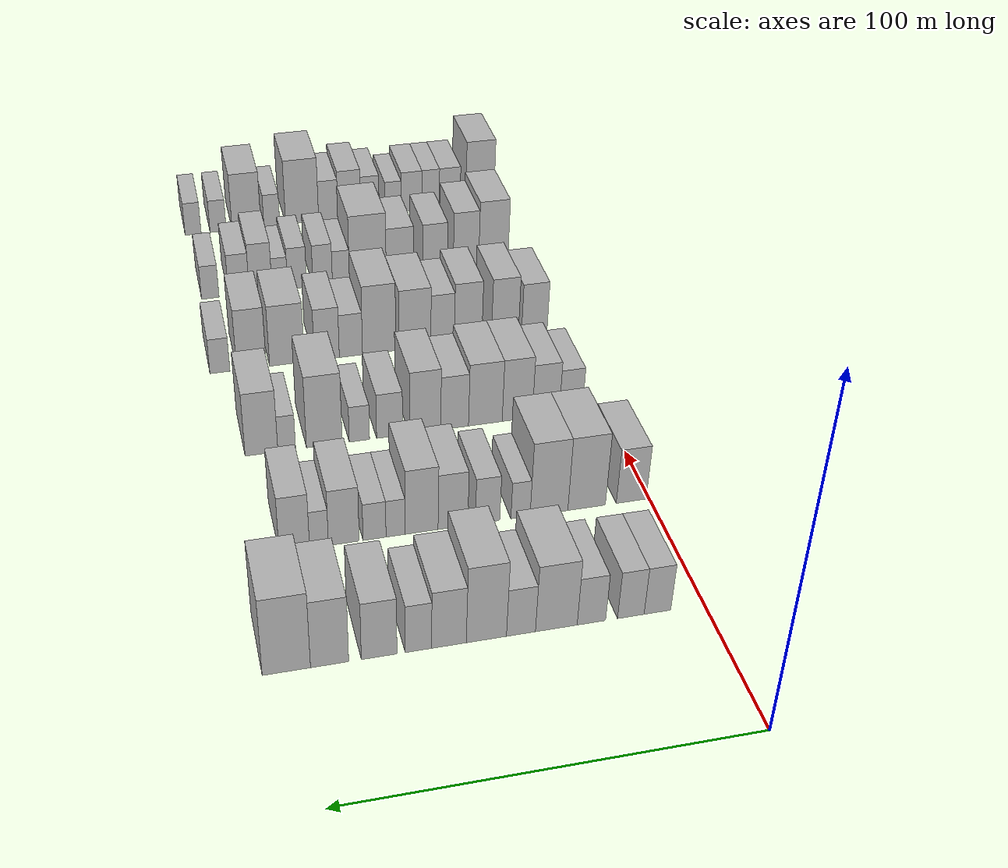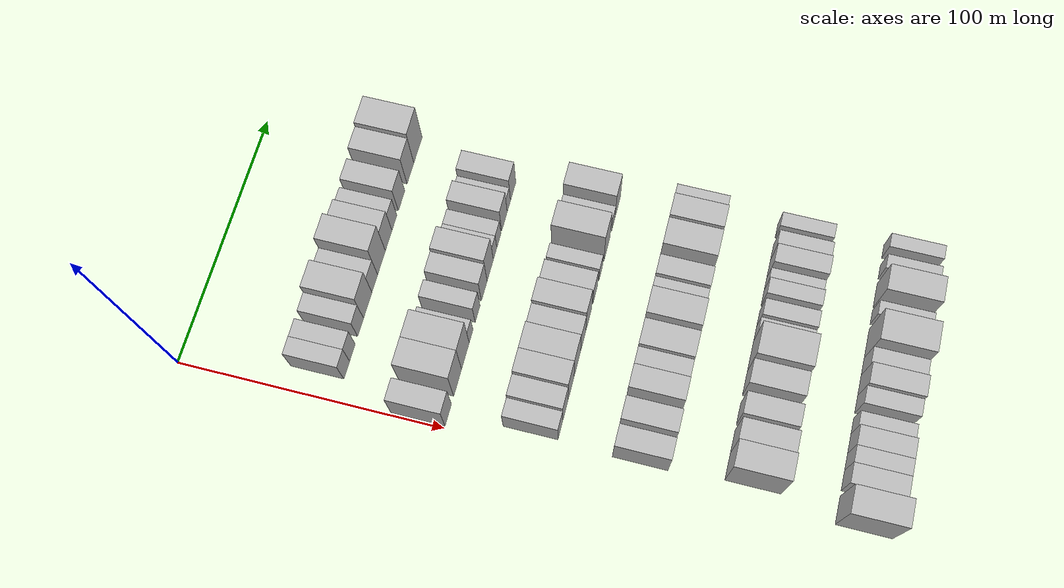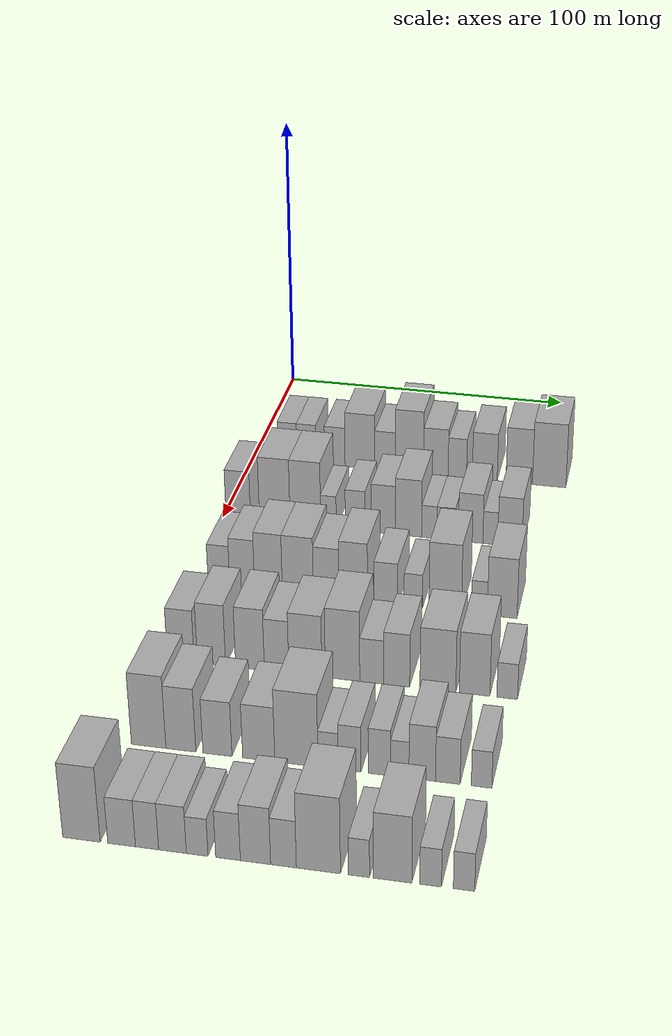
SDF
<sdf version="1.6">
 <world name="default">
  <model name="building_73">
   <static>1</static>
   <pose>50.0000 12.0459 0 0.000000 0.000000 0.000000</pose>
   <link name="link">
    <pose>0 0 7.50 0 0 0</pose>
    <collision name="collision"><geometry><box><size>20.0000 6.7732 15.0000</size></box></geometry></collision>
    <visual name="visual">
     <cast_shadows>0</cast_shadows>
     <geometry><box><size>20.0000 6.7732 15.0000</size></box></geometry>
     <material>
      <script>
       <uri>model://HANNAS_wall/materials/scripts</uri>
       <uri>model://HANNAS_wall/materials/textures</uri>
       <name>vrc/HANNAS_wall</name>
      </script>
     </material>
    </visual>
   </link>
  </model>
  <model name="building_74">
   <static>1</static>
   <pose>50.0000 18.7949 0 0.000000 0.000000 0.000000</pose>
   <link name="link">
    <pose>0 0 7.50 0 0 0</pose>
    <collision name="collision"><geometry><box><size>20.0000 6.7249 15.0000</size></box></geometry></collision>
    <visual name="visual">
     <cast_shadows>0</cast_shadows>
     <geometry><box><size>20.0000 6.7249 15.0000</size></box></geometry>
     <material>
      <script>
       <uri>model://HANNAS_wall/materials/scripts</uri>
       <uri>model://HANNAS_wall/materials/textures</uri>
       <name>vrc/HANNAS_wall</name>
      </script>
     </material>
    </visual>
   </link>
  </model>
  <model name="building_75">
   <static>1</static>
   <pose>50.0000 28.7229 0 0.000000 0.000000 0.000000</pose>
   <link name="link">
    <pose>0 0 7.50 0 0 0</pose>
    <collision name="collision"><geometry><box><size>20.0000 7.1312 15.0000</size></box></geometry></collision>
    <visual name="visual">
     <cast_shadows>0</cast_shadows>
     <geometry><box><size>20.0000 7.1312 15.0000</size></box></geometry>
     <material>
      <script>
       <uri>model://HANNAS_wall/materials/scripts</uri>
       <uri>model://HANNAS_wall/materials/textures</uri>
       <name>vrc/HANNAS_wall</name>
      </script>
     </material>
    </visual>
   </link>
  </model>
  <model name="building_76">
   <static>1</static>
   <pose>50.0000 37.4743 0 0.000000 0.000000 0.000000</pose>
   <link name="link">
    <pose>0 0 10.50 0 0 0</pose>
    <collision name="collision"><geometry><box><size>20.0000 10.3715 21.0000</size></box></geometry></collision>
    <visual name="visual">
     <cast_shadows>0</cast_shadows>
     <geometry><box><size>20.0000 10.3715 21.0000</size></box></geometry>
     <material>
      <script>
       <uri>model://HANNAS_wall/materials/scripts</uri>
       <uri>model://HANNAS_wall/materials/textures</uri>
       <name>vrc/HANNAS_wall</name>
      </script>
     </material>
    </visual>
   </link>
  </model>
  <model name="building_77">
   <static>1</static>
   <pose>50.0000 46.2324 0 0.000000 0.000000 0.000000</pose>
   <link name="link">
    <pose>0 0 7.50 0 0 0</pose>
    <collision name="collision"><geometry><box><size>20.0000 7.1447 15.0000</size></box></geometry></collision>
    <visual name="visual">
     <cast_shadows>0</cast_shadows>
     <geometry><box><size>20.0000 7.1447 15.0000</size></box></geometry>
     <material>
      <script>
       <uri>model://HANNAS_wall/materials/scripts</uri>
       <uri>model://HANNAS_wall/materials/textures</uri>
       <name>vrc/HANNAS_wall</name>
      </script>
     </material>
    </visual>
   </link>
  </model>
  <model name="building_78">
   <static>1</static>
   <pose>50.0000 54.7265 0 0.000000 0.000000 0.000000</pose>
   <link name="link">
    <pose>0 0 12.00 0 0 0</pose>
    <collision name="collision"><geometry><box><size>20.0000 9.8435 24.0000</size></box></geometry></collision>
    <visual name="visual">
     <cast_shadows>0</cast_shadows>
     <geometry><box><size>20.0000 9.8435 24.0000</size></box></geometry>
     <material>
      <script>
       <uri>model://HANNAS_wall/materials/scripts</uri>
       <uri>model://HANNAS_wall/materials/textures</uri>
       <name>vrc/HANNAS_wall</name>
      </script>
     </material>
    </visual>
   </link>
  </model>
  <model name="building_79">
   <static>1</static>
   <pose>50.0000 63.8626 0 0.000000 0.000000 0.000000</pose>
   <link name="link">
    <pose>0 0 9.00 0 0 0</pose>
    <collision name="collision"><geometry><box><size>20.0000 8.4287 18.0000</size></box></geometry></collision>
    <visual name="visual">
     <cast_shadows>0</cast_shadows>
     <geometry><box><size>20.0000 8.4287 18.0000</size></box></geometry>
     <material>
      <script>
       <uri>model://HANNAS_wall/materials/scripts</uri>
       <uri>model://HANNAS_wall/materials/textures</uri>
       <name>vrc/HANNAS_wall</name>
      </script>
     </material>
    </visual>
   </link>
  </model>
  <model name="building_80">
   <static>1</static>
   <pose>50.0000 71.2270 0 0.000000 0.000000 0.000000</pose>
   <link name="link">
    <pose>0 0 7.50 0 0 0</pose>
    <collision name="collision"><geometry><box><size>20.0000 6.3001 15.0000</size></box></geometry></collision>
    <visual name="visual">
     <cast_shadows>0</cast_shadows>
     <geometry><box><size>20.0000 6.3001 15.0000</size></box></geometry>
     <material>
      <script>
       <uri>model://HANNAS_wall/materials/scripts</uri>
       <uri>model://HANNAS_wall/materials/textures</uri>
       <name>vrc/HANNAS_wall</name>
      </script>
     </material>
    </visual>
   </link>
  </model>
  <model name="building_81">
   <static>1</static>
   <pose>50.0000 80.6220 0 0.000000 0.000000 0.000000</pose>
   <link name="link">
    <pose>0 0 9.00 0 0 0</pose>
    <collision name="collision"><geometry><box><size>20.0000 8.4898 18.0000</size></box></geometry></collision>
    <visual name="visual">
     <cast_shadows>0</cast_shadows>
     <geometry><box><size>20.0000 8.4898 18.0000</size></box></geometry>
     <material>
      <script>
       <uri>model://HANNAS_wall/materials/scripts</uri>
       <uri>model://HANNAS_wall/materials/textures</uri>
       <name>vrc/HANNAS_wall</name>
      </script>
     </material>
    </visual>
   </link>
  </model>
  <model name="building_82">
   <static>1</static>
   <pose>50.0000 92.3684 0 0.000000 0.000000 0.000000</pose>
   <link name="link">
    <pose>0 0 10.50 0 0 0</pose>
    <collision name="collision"><geometry><box><size>20.0000 9.0030 21.0000</size></box></geometry></collision>
    <visual name="visual">
     <cast_shadows>0</cast_shadows>
     <geometry><box><size>20.0000 9.0030 21.0000</size></box></geometry>
     <material>
      <script>
       <uri>model://HANNAS_wall/materials/scripts</uri>
       <uri>model://HANNAS_wall/materials/textures</uri>
       <name>vrc/HANNAS_wall</name>
      </script>
     </material>
    </visual>
   </link>
  </model>
  <model name="building_83">
   <static>1</static>
   <pose>50.0000 102.5158 0 0.000000 0.000000 0.000000</pose>
   <link name="link">
    <pose>0 0 12.00 0 0 0</pose>
    <collision name="collision"><geometry><box><size>20.0000 11.2918 24.0000</size></box></geometry></collision>
    <visual name="visual">
     <cast_shadows>0</cast_shadows>
     <geometry><box><size>20.0000 11.2918 24.0000</size></box></geometry>
     <material>
      <script>
       <uri>model://HANNAS_wall/materials/scripts</uri>
       <uri>model://HANNAS_wall/materials/textures</uri>
       <name>vrc/HANNAS_wall</name>
      </script>
     </material>
    </visual>
   </link>
  </model>
  <model name="building_211">
   <static>1</static>
   <pose>90.0000 5.0111 0 0.000000 0.000000 0.000000</pose>
   <link name="link">
    <pose>0 0 9.00 0 0 0</pose>
    <collision name="collision"><geometry><box><size>20.0000 8.2553 18.0000</size></box></geometry></collision>
    <visual name="visual">
     <cast_shadows>0</cast_shadows>
     <geometry><box><size>20.0000 8.2553 18.0000</size></box></geometry>
     <material>
      <script>
       <uri>model://HANNAS_wall/materials/scripts</uri>
       <uri>model://HANNAS_wall/materials/textures</uri>
       <name>vrc/HANNAS_wall</name>
      </script>
     </material>
    </visual>
   </link>
  </model>
  <model name="building_212">
   <static>1</static>
   <pose>90.0000 17.2808 0 0.000000 0.000000 0.000000</pose>
   <link name="link">
    <pose>0 0 12.00 0 0 0</pose>
    <collision name="collision"><geometry><box><size>20.0000 10.2840 24.0000</size></box></geometry></collision>
    <visual name="visual">
     <cast_shadows>0</cast_shadows>
     <geometry><box><size>20.0000 10.2840 24.0000</size></box></geometry>
     <material>
      <script>
       <uri>model://HANNAS_wall/materials/scripts</uri>
       <uri>model://HANNAS_wall/materials/textures</uri>
       <name>vrc/HANNAS_wall</name>
      </script>
     </material>
    </visual>
   </link>
  </model>
  <model name="building_213">
   <static>1</static>
   <pose>90.0000 27.5423 0 0.000000 0.000000 0.000000</pose>
   <link name="link">
    <pose>0 0 12.00 0 0 0</pose>
    <collision name="collision"><geometry><box><size>20.0000 10.2389 24.0000</size></box></geometry></collision>
    <visual name="visual">
     <cast_shadows>0</cast_shadows>
     <geometry><box><size>20.0000 10.2389 24.0000</size></box></geometry>
     <material>
      <script>
       <uri>model://HANNAS_wall/materials/scripts</uri>
       <uri>model://HANNAS_wall/materials/textures</uri>
       <name>vrc/HANNAS_wall</name>
      </script>
     </material>
    </visual>
   </link>
  </model>
  <model name="building_214">
   <static>1</static>
   <pose>90.0000 35.2422 0 0.000000 0.000000 0.000000</pose>
   <link name="link">
    <pose>0 0 6.00 0 0 0</pose>
    <collision name="collision"><geometry><box><size>20.0000 5.1610 12.0000</size></box></geometry></collision>
    <visual name="visual">
     <cast_shadows>0</cast_shadows>
     <geometry><box><size>20.0000 5.1610 12.0000</size></box></geometry>
     <material>
      <script>
       <uri>model://HANNAS_wall/materials/scripts</uri>
       <uri>model://HANNAS_wall/materials/textures</uri>
       <name>vrc/HANNAS_wall</name>
      </script>
     </material>
    </visual>
   </link>
  </model>
  <model name="building_215">
   <static>1</static>
   <pose>90.0000 44.1003 0 0.000000 0.000000 0.000000</pose>
   <link name="link">
    <pose>0 0 7.50 0 0 0</pose>
    <collision name="collision"><geometry><box><size>20.0000 6.5551 15.0000</size></box></geometry></collision>
    <visual name="visual">
     <cast_shadows>0</cast_shadows>
     <geometry><box><size>20.0000 6.5551 15.0000</size></box></geometry>
     <material>
      <script>
       <uri>model://HANNAS_wall/materials/scripts</uri>
       <uri>model://HANNAS_wall/materials/textures</uri>
       <name>vrc/HANNAS_wall</name>
      </script>
     </material>
    </visual>
   </link>
  </model>
  <model name="building_216">
   <static>1</static>
   <pose>90.0000 53.3080 0 0.000000 0.000000 0.000000</pose>
   <link name="link">
    <pose>0 0 9.00 0 0 0</pose>
    <collision name="collision"><geometry><box><size>20.0000 7.8604 18.0000</size></box></geometry></collision>
    <visual name="visual">
     <cast_shadows>0</cast_shadows>
     <geometry><box><size>20.0000 7.8604 18.0000</size></box></geometry>
     <material>
      <script>
       <uri>model://HANNAS_wall/materials/scripts</uri>
       <uri>model://HANNAS_wall/materials/textures</uri>
       <name>vrc/HANNAS_wall</name>
      </script>
     </material>
    </visual>
   </link>
  </model>
  <model name="building_217">
   <static>1</static>
   <pose>90.0000 61.5824 0 0.000000 0.000000 0.000000</pose>
   <link name="link">
    <pose>0 0 10.50 0 0 0</pose>
    <collision name="collision"><geometry><box><size>20.0000 8.6885 21.0000</size></box></geometry></collision>
    <visual name="visual">
     <cast_shadows>0</cast_shadows>
     <geometry><box><size>20.0000 8.6885 21.0000</size></box></geometry>
     <material>
      <script>
       <uri>model://HANNAS_wall/materials/scripts</uri>
       <uri>model://HANNAS_wall/materials/textures</uri>
       <name>vrc/HANNAS_wall</name>
      </script>
     </material>
    </visual>
   </link>
  </model>
  <model name="building_218">
   <static>1</static>
   <pose>90.0000 68.4163 0 0.000000 0.000000 0.000000</pose>
   <link name="link">
    <pose>0 0 6.00 0 0 0</pose>
    <collision name="collision"><geometry><box><size>20.0000 4.9794 12.0000</size></box></geometry></collision>
    <visual name="visual">
     <cast_shadows>0</cast_shadows>
     <geometry><box><size>20.0000 4.9794 12.0000</size></box></geometry>
     <material>
      <script>
       <uri>model://HANNAS_wall/materials/scripts</uri>
       <uri>model://HANNAS_wall/materials/textures</uri>
       <name>vrc/HANNAS_wall</name>
      </script>
     </material>
    </visual>
   </link>
  </model>
  <model name="building_219">
   <static>1</static>
   <pose>90.0000 73.8951 0 0.000000 0.000000 0.000000</pose>
   <link name="link">
    <pose>0 0 6.00 0 0 0</pose>
    <collision name="collision"><geometry><box><size>20.0000 5.9780 12.0000</size></box></geometry></collision>
    <visual name="visual">
     <cast_shadows>0</cast_shadows>
     <geometry><box><size>20.0000 5.9780 12.0000</size></box></geometry>
     <material>
      <script>
       <uri>model://HANNAS_wall/materials/scripts</uri>
       <uri>model://HANNAS_wall/materials/textures</uri>
       <name>vrc/HANNAS_wall</name>
      </script>
     </material>
    </visual>
   </link>
  </model>
  <model name="building_220">
   <static>1</static>
   <pose>90.0000 81.8570 0 0.000000 0.000000 0.000000</pose>
   <link name="link">
    <pose>0 0 9.00 0 0 0</pose>
    <collision name="collision"><geometry><box><size>20.0000 7.9458 18.0000</size></box></geometry></collision>
    <visual name="visual">
     <cast_shadows>0</cast_shadows>
     <geometry><box><size>20.0000 7.9458 18.0000</size></box></geometry>
     <material>
      <script>
       <uri>model://HANNAS_wall/materials/scripts</uri>
       <uri>model://HANNAS_wall/materials/textures</uri>
       <name>vrc/HANNAS_wall</name>
      </script>
     </material>
    </visual>
   </link>
  </model>
  <model name="building_221">
   <static>1</static>
   <pose>90.0000 88.2534 0 0.000000 0.000000 0.000000</pose>
   <link name="link">
    <pose>0 0 6.00 0 0 0</pose>
    <collision name="collision"><geometry><box><size>20.0000 4.8470 12.0000</size></box></geometry></collision>
    <visual name="visual">
     <cast_shadows>0</cast_shadows>
     <geometry><box><size>20.0000 4.8470 12.0000</size></box></geometry>
     <material>
      <script>
       <uri>model://HANNAS_wall/materials/scripts</uri>
       <uri>model://HANNAS_wall/materials/textures</uri>
       <name>vrc/HANNAS_wall</name>
      </script>
     </material>
    </visual>
   </link>
  </model>
  <model name="building_222">
   <static>1</static>
   <pose>90.0000 94.5775 0 0.000000 0.000000 0.000000</pose>
   <link name="link">
    <pose>0 0 9.00 0 0 0</pose>
    <collision name="collision"><geometry><box><size>20.0000 7.8013 18.0000</size></box></geometry></collision>
    <visual name="visual">
     <cast_shadows>0</cast_shadows>
     <geometry><box><size>20.0000 7.8013 18.0000</size></box></geometry>
     <material>
      <script>
       <uri>model://HANNAS_wall/materials/scripts</uri>
       <uri>model://HANNAS_wall/materials/textures</uri>
       <name>vrc/HANNAS_wall</name>
      </script>
     </material>
    </visual>
   </link>
  </model>
  <model name="building_351">
   <static>1</static>
   <pose>130.0000 9.3370 0 0.000000 0.000000 0.000000</pose>
   <link name="link">
    <pose>0 0 7.50 0 0 0</pose>
    <collision name="collision"><geometry><box><size>20.0000 6.8540 15.0000</size></box></geometry></collision>
    <visual name="visual">
     <cast_shadows>0</cast_shadows>
     <geometry><box><size>20.0000 6.8540 15.0000</size></box></geometry>
     <material>
      <script>
       <uri>model://HANNAS_wall/materials/scripts</uri>
       <uri>model://HANNAS_wall/materials/textures</uri>
       <name>vrc/HANNAS_wall</name>
      </script>
     </material>
    </visual>
   </link>
  </model>
  <model name="building_352">
   <static>1</static>
   <pose>130.0000 16.7291 0 0.000000 0.000000 0.000000</pose>
   <link name="link">
    <pose>0 0 9.00 0 0 0</pose>
    <collision name="collision"><geometry><box><size>20.0000 7.9303 18.0000</size></box></geometry></collision>
    <visual name="visual">
     <cast_shadows>0</cast_shadows>
     <geometry><box><size>20.0000 7.9303 18.0000</size></box></geometry>
     <material>
      <script>
       <uri>model://HANNAS_wall/materials/scripts</uri>
       <uri>model://HANNAS_wall/materials/textures</uri>
       <name>vrc/HANNAS_wall</name>
      </script>
     </material>
    </visual>
   </link>
  </model>
  <model name="building_353">
   <static>1</static>
   <pose>130.0000 25.0855 0 0.000000 0.000000 0.000000</pose>
   <link name="link">
    <pose>0 0 10.50 0 0 0</pose>
    <collision name="collision"><geometry><box><size>20.0000 8.7824 21.0000</size></box></geometry></collision>
    <visual name="visual">
     <cast_shadows>0</cast_shadows>
     <geometry><box><size>20.0000 8.7824 21.0000</size></box></geometry>
     <material>
      <script>
       <uri>model://HANNAS_wall/materials/scripts</uri>
       <uri>model://HANNAS_wall/materials/textures</uri>
       <name>vrc/HANNAS_wall</name>
      </script>
     </material>
    </visual>
   </link>
  </model>
  <model name="building_354">
   <static>1</static>
   <pose>130.0000 34.3622 0 0.000000 0.000000 0.000000</pose>
   <link name="link">
    <pose>0 0 10.50 0 0 0</pose>
    <collision name="collision"><geometry><box><size>20.0000 9.7710 21.0000</size></box></geometry></collision>
    <visual name="visual">
     <cast_shadows>0</cast_shadows>
     <geometry><box><size>20.0000 9.7710 21.0000</size></box></geometry>
     <material>
      <script>
       <uri>model://HANNAS_wall/materials/scripts</uri>
       <uri>model://HANNAS_wall/materials/textures</uri>
       <name>vrc/HANNAS_wall</name>
      </script>
     </material>
    </visual>
   </link>
  </model>
  <model name="building_355">
   <static>1</static>
   <pose>130.0000 43.2538 0 0.000000 0.000000 0.000000</pose>
   <link name="link">
    <pose>0 0 9.00 0 0 0</pose>
    <collision name="collision"><geometry><box><size>20.0000 8.0122 18.0000</size></box></geometry></collision>
    <visual name="visual">
     <cast_shadows>0</cast_shadows>
     <geometry><box><size>20.0000 8.0122 18.0000</size></box></geometry>
     <material>
      <script>
       <uri>model://HANNAS_wall/materials/scripts</uri>
       <uri>model://HANNAS_wall/materials/textures</uri>
       <name>vrc/HANNAS_wall</name>
      </script>
     </material>
    </visual>
   </link>
  </model>
  <model name="building_356">
   <static>1</static>
   <pose>130.0000 51.7144 0 0.000000 0.000000 0.000000</pose>
   <link name="link">
    <pose>0 0 10.50 0 0 0</pose>
    <collision name="collision"><geometry><box><size>20.0000 8.9091 21.0000</size></box></geometry></collision>
    <visual name="visual">
     <cast_shadows>0</cast_shadows>
     <geometry><box><size>20.0000 8.9091 21.0000</size></box></geometry>
     <material>
      <script>
       <uri>model://HANNAS_wall/materials/scripts</uri>
       <uri>model://HANNAS_wall/materials/textures</uri>
       <name>vrc/HANNAS_wall</name>
      </script>
     </material>
    </visual>
   </link>
  </model>
  <model name="building_357">
   <static>1</static>
   <pose>130.0000 61.8252 0 0.000000 0.000000 0.000000</pose>
   <link name="link">
    <pose>0 0 7.50 0 0 0</pose>
    <collision name="collision"><geometry><box><size>20.0000 7.3125 15.0000</size></box></geometry></collision>
    <visual name="visual">
     <cast_shadows>0</cast_shadows>
     <geometry><box><size>20.0000 7.3125 15.0000</size></box></geometry>
     <material>
      <script>
       <uri>model://HANNAS_wall/materials/scripts</uri>
       <uri>model://HANNAS_wall/materials/textures</uri>
       <name>vrc/HANNAS_wall</name>
      </script>
     </material>
    </visual>
   </link>
  </model>
  <model name="building_358">
   <static>1</static>
   <pose>130.0000 70.3357 0 0.000000 0.000000 0.000000</pose>
   <link name="link">
    <pose>0 0 6.00 0 0 0</pose>
    <collision name="collision"><geometry><box><size>20.0000 5.7084 12.0000</size></box></geometry></collision>
    <visual name="visual">
     <cast_shadows>0</cast_shadows>
     <geometry><box><size>20.0000 5.7084 12.0000</size></box></geometry>
     <material>
      <script>
       <uri>model://HANNAS_wall/materials/scripts</uri>
       <uri>model://HANNAS_wall/materials/textures</uri>
       <name>vrc/HANNAS_wall</name>
      </script>
     </material>
    </visual>
   </link>
  </model>
  <model name="building_359">
   <static>1</static>
   <pose>130.0000 80.1763 0 0.000000 0.000000 0.000000</pose>
   <link name="link">
    <pose>0 0 12.00 0 0 0</pose>
    <collision name="collision"><geometry><box><size>20.0000 9.9728 24.0000</size></box></geometry></collision>
    <visual name="visual">
     <cast_shadows>0</cast_shadows>
     <geometry><box><size>20.0000 9.9728 24.0000</size></box></geometry>
     <material>
      <script>
       <uri>model://HANNAS_wall/materials/scripts</uri>
       <uri>model://HANNAS_wall/materials/textures</uri>
       <name>vrc/HANNAS_wall</name>
      </script>
     </material>
    </visual>
   </link>
  </model>
  <model name="building_360">
   <static>1</static>
   <pose>130.0000 90.6129 0 0.000000 0.000000 0.000000</pose>
   <link name="link">
    <pose>0 0 6.00 0 0 0</pose>
    <collision name="collision"><geometry><box><size>20.0000 4.9004 12.0000</size></box></geometry></collision>
    <visual name="visual">
     <cast_shadows>0</cast_shadows>
     <geometry><box><size>20.0000 4.9004 12.0000</size></box></geometry>
     <material>
      <script>
       <uri>model://HANNAS_wall/materials/scripts</uri>
       <uri>model://HANNAS_wall/materials/textures</uri>
       <name>vrc/HANNAS_wall</name>
      </script>
     </material>
    </visual>
   </link>
  </model>
  <model name="building_361">
   <static>1</static>
   <pose>130.0000 97.5812 0 0.000000 0.000000 0.000000</pose>
   <link name="link">
    <pose>0 0 10.50 0 0 0</pose>
    <collision name="collision"><geometry><box><size>20.0000 9.0362 21.0000</size></box></geometry></collision>
    <visual name="visual">
     <cast_shadows>0</cast_shadows>
     <geometry><box><size>20.0000 9.0362 21.0000</size></box></geometry>
     <material>
      <script>
       <uri>model://HANNAS_wall/materials/scripts</uri>
       <uri>model://HANNAS_wall/materials/textures</uri>
       <name>vrc/HANNAS_wall</name>
      </script>
     </material>
    </visual>
   </link>
  </model>
  <model name="building_492">
   <static>1</static>
   <pose>170.0000 8.6833 0 0.000000 0.000000 0.000000</pose>
   <link name="link">
    <pose>0 0 9.00 0 0 0</pose>
    <collision name="collision"><geometry><box><size>20.0000 8.0615 18.0000</size></box></geometry></collision>
    <visual name="visual">
     <cast_shadows>0</cast_shadows>
     <geometry><box><size>20.0000 8.0615 18.0000</size></box></geometry>
     <material>
      <script>
       <uri>model://HANNAS_wall/materials/scripts</uri>
       <uri>model://HANNAS_wall/materials/textures</uri>
       <name>vrc/HANNAS_wall</name>
      </script>
     </material>
    </visual>
   </link>
  </model>
  <model name="building_493">
   <static>1</static>
   <pose>170.0000 17.9398 0 0.000000 0.000000 0.000000</pose>
   <link name="link">
    <pose>0 0 10.50 0 0 0</pose>
    <collision name="collision"><geometry><box><size>20.0000 8.4514 21.0000</size></box></geometry></collision>
    <visual name="visual">
     <cast_shadows>0</cast_shadows>
     <geometry><box><size>20.0000 8.4514 21.0000</size></box></geometry>
     <material>
      <script>
       <uri>model://HANNAS_wall/materials/scripts</uri>
       <uri>model://HANNAS_wall/materials/textures</uri>
       <name>vrc/HANNAS_wall</name>
      </script>
     </material>
    </visual>
   </link>
  </model>
  <model name="building_494">
   <static>1</static>
   <pose>170.0000 29.4525 0 0.000000 0.000000 0.000000</pose>
   <link name="link">
    <pose>0 0 10.50 0 0 0</pose>
    <collision name="collision"><geometry><box><size>20.0000 8.5741 21.0000</size></box></geometry></collision>
    <visual name="visual">
     <cast_shadows>0</cast_shadows>
     <geometry><box><size>20.0000 8.5741 21.0000</size></box></geometry>
     <material>
      <script>
       <uri>model://HANNAS_wall/materials/scripts</uri>
       <uri>model://HANNAS_wall/materials/textures</uri>
       <name>vrc/HANNAS_wall</name>
      </script>
     </material>
    </visual>
   </link>
  </model>
  <model name="building_495">
   <static>1</static>
   <pose>170.0000 37.3714 0 0.000000 0.000000 0.000000</pose>
   <link name="link">
    <pose>0 0 9.00 0 0 0</pose>
    <collision name="collision"><geometry><box><size>20.0000 7.2636 18.0000</size></box></geometry></collision>
    <visual name="visual">
     <cast_shadows>0</cast_shadows>
     <geometry><box><size>20.0000 7.2636 18.0000</size></box></geometry>
     <material>
      <script>
       <uri>model://HANNAS_wall/materials/scripts</uri>
       <uri>model://HANNAS_wall/materials/textures</uri>
       <name>vrc/HANNAS_wall</name>
      </script>
     </material>
    </visual>
   </link>
  </model>
  <model name="building_496">
   <static>1</static>
   <pose>170.0000 45.9030 0 0.000000 0.000000 0.000000</pose>
   <link name="link">
    <pose>0 0 10.50 0 0 0</pose>
    <collision name="collision"><geometry><box><size>20.0000 9.7996 21.0000</size></box></geometry></collision>
    <visual name="visual">
     <cast_shadows>0</cast_shadows>
     <geometry><box><size>20.0000 9.7996 21.0000</size></box></geometry>
     <material>
      <script>
       <uri>model://HANNAS_wall/materials/scripts</uri>
       <uri>model://HANNAS_wall/materials/textures</uri>
       <name>vrc/HANNAS_wall</name>
      </script>
     </material>
    </visual>
   </link>
  </model>
  <model name="building_497">
   <static>1</static>
   <pose>170.0000 56.8488 0 0.000000 0.000000 0.000000</pose>
   <link name="link">
    <pose>0 0 12.00 0 0 0</pose>
    <collision name="collision"><geometry><box><size>20.0000 10.0920 24.0000</size></box></geometry></collision>
    <visual name="visual">
     <cast_shadows>0</cast_shadows>
     <geometry><box><size>20.0000 10.0920 24.0000</size></box></geometry>
     <material>
      <script>
       <uri>model://HANNAS_wall/materials/scripts</uri>
       <uri>model://HANNAS_wall/materials/textures</uri>
       <name>vrc/HANNAS_wall</name>
      </script>
     </material>
    </visual>
   </link>
  </model>
  <model name="building_498">
   <static>1</static>
   <pose>170.0000 65.4060 0 0.000000 0.000000 0.000000</pose>
   <link name="link">
    <pose>0 0 7.50 0 0 0</pose>
    <collision name="collision"><geometry><box><size>20.0000 7.0225 15.0000</size></box></geometry></collision>
    <visual name="visual">
     <cast_shadows>0</cast_shadows>
     <geometry><box><size>20.0000 7.0225 15.0000</size></box></geometry>
     <material>
      <script>
       <uri>model://HANNAS_wall/materials/scripts</uri>
       <uri>model://HANNAS_wall/materials/textures</uri>
       <name>vrc/HANNAS_wall</name>
      </script>
     </material>
    </visual>
   </link>
  </model>
  <model name="building_499">
   <static>1</static>
   <pose>170.0000 72.6806 0 0.000000 0.000000 0.000000</pose>
   <link name="link">
    <pose>0 0 9.00 0 0 0</pose>
    <collision name="collision"><geometry><box><size>20.0000 7.5266 18.0000</size></box></geometry></collision>
    <visual name="visual">
     <cast_shadows>0</cast_shadows>
     <geometry><box><size>20.0000 7.5266 18.0000</size></box></geometry>
     <material>
      <script>
       <uri>model://HANNAS_wall/materials/scripts</uri>
       <uri>model://HANNAS_wall/materials/textures</uri>
       <name>vrc/HANNAS_wall</name>
      </script>
     </material>
    </visual>
   </link>
  </model>
  <model name="building_500">
   <static>1</static>
   <pose>170.0000 84.6254 0 0.000000 0.000000 0.000000</pose>
   <link name="link">
    <pose>0 0 10.50 0 0 0</pose>
    <collision name="collision"><geometry><box><size>20.0000 10.3632 21.0000</size></box></geometry></collision>
    <visual name="visual">
     <cast_shadows>0</cast_shadows>
     <geometry><box><size>20.0000 10.3632 21.0000</size></box></geometry>
     <material>
      <script>
       <uri>model://HANNAS_wall/materials/scripts</uri>
       <uri>model://HANNAS_wall/materials/textures</uri>
       <name>vrc/HANNAS_wall</name>
      </script>
     </material>
    </visual>
   </link>
  </model>
  <model name="building_501">
   <static>1</static>
   <pose>170.0000 95.1908 0 0.000000 0.000000 0.000000</pose>
   <link name="link">
    <pose>0 0 10.50 0 0 0</pose>
    <collision name="collision"><geometry><box><size>20.0000 8.7676 21.0000</size></box></geometry></collision>
    <visual name="visual">
     <cast_shadows>0</cast_shadows>
     <geometry><box><size>20.0000 8.7676 21.0000</size></box></geometry>
     <material>
      <script>
       <uri>model://HANNAS_wall/materials/scripts</uri>
       <uri>model://HANNAS_wall/materials/textures</uri>
       <name>vrc/HANNAS_wall</name>
      </script>
     </material>
    </visual>
   </link>
  </model>
  <model name="building_502">
   <static>1</static>
   <pose>170.0000 104.5213 0 0.000000 0.000000 0.000000</pose>
   <link name="link">
    <pose>0 0 6.00 0 0 0</pose>
    <collision name="collision"><geometry><box><size>20.0000 5.8932 12.0000</size></box></geometry></collision>
    <visual name="visual">
     <cast_shadows>0</cast_shadows>
     <geometry><box><size>20.0000 5.8932 12.0000</size></box></geometry>
     <material>
      <script>
       <uri>model://HANNAS_wall/materials/scripts</uri>
       <uri>model://HANNAS_wall/materials/textures</uri>
       <name>vrc/HANNAS_wall</name>
      </script>
     </material>
    </visual>
   </link>
  </model>
  <model name="building_629">
   <static>1</static>
   <pose>210.0000 11.1286 0 0.000000 0.000000 0.000000</pose>
   <link name="link">
    <pose>0 0 12.00 0 0 0</pose>
    <collision name="collision"><geometry><box><size>20.0000 9.8034 24.0000</size></box></geometry></collision>
    <visual name="visual">
     <cast_shadows>0</cast_shadows>
     <geometry><box><size>20.0000 9.8034 24.0000</size></box></geometry>
     <material>
      <script>
       <uri>model://HANNAS_wall/materials/scripts</uri>
       <uri>model://HANNAS_wall/materials/textures</uri>
       <name>vrc/HANNAS_wall</name>
      </script>
     </material>
    </visual>
   </link>
  </model>
  <model name="building_630">
   <static>1</static>
   <pose>210.0000 20.2564 0 0.000000 0.000000 0.000000</pose>
   <link name="link">
    <pose>0 0 10.50 0 0 0</pose>
    <collision name="collision"><geometry><box><size>20.0000 8.4522 21.0000</size></box></geometry></collision>
    <visual name="visual">
     <cast_shadows>0</cast_shadows>
     <geometry><box><size>20.0000 8.4522 21.0000</size></box></geometry>
     <material>
      <script>
       <uri>model://HANNAS_wall/materials/scripts</uri>
       <uri>model://HANNAS_wall/materials/textures</uri>
       <name>vrc/HANNAS_wall</name>
      </script>
     </material>
    </visual>
   </link>
  </model>
  <model name="building_631">
   <static>1</static>
   <pose>210.0000 30.5599 0 0.000000 0.000000 0.000000</pose>
   <link name="link">
    <pose>0 0 9.00 0 0 0</pose>
    <collision name="collision"><geometry><box><size>20.0000 8.1549 18.0000</size></box></geometry></collision>
    <visual name="visual">
     <cast_shadows>0</cast_shadows>
     <geometry><box><size>20.0000 8.1549 18.0000</size></box></geometry>
     <material>
      <script>
       <uri>model://HANNAS_wall/materials/scripts</uri>
       <uri>model://HANNAS_wall/materials/textures</uri>
       <name>vrc/HANNAS_wall</name>
      </script>
     </material>
    </visual>
   </link>
  </model>
  <model name="building_632">
   <static>1</static>
   <pose>210.0000 42.1236 0 0.000000 0.000000 0.000000</pose>
   <link name="link">
    <pose>0 0 9.00 0 0 0</pose>
    <collision name="collision"><geometry><box><size>20.0000 8.9727 18.0000</size></box></geometry></collision>
    <visual name="visual">
     <cast_shadows>0</cast_shadows>
     <geometry><box><size>20.0000 8.9727 18.0000</size></box></geometry>
     <material>
      <script>
       <uri>model://HANNAS_wall/materials/scripts</uri>
       <uri>model://HANNAS_wall/materials/textures</uri>
       <name>vrc/HANNAS_wall</name>
      </script>
     </material>
    </visual>
   </link>
  </model>
  <model name="building_633">
   <static>1</static>
   <pose>210.0000 52.5974 0 0.000000 0.000000 0.000000</pose>
   <link name="link">
    <pose>0 0 12.00 0 0 0</pose>
    <collision name="collision"><geometry><box><size>20.0000 11.9749 24.0000</size></box></geometry></collision>
    <visual name="visual">
     <cast_shadows>0</cast_shadows>
     <geometry><box><size>20.0000 11.9749 24.0000</size></box></geometry>
     <material>
      <script>
       <uri>model://HANNAS_wall/materials/scripts</uri>
       <uri>model://HANNAS_wall/materials/textures</uri>
       <name>vrc/HANNAS_wall</name>
      </script>
     </material>
    </visual>
   </link>
  </model>
  <model name="building_634">
   <static>1</static>
   <pose>210.0000 61.3397 0 0.000000 0.000000 0.000000</pose>
   <link name="link">
    <pose>0 0 6.00 0 0 0</pose>
    <collision name="collision"><geometry><box><size>20.0000 5.5096 12.0000</size></box></geometry></collision>
    <visual name="visual">
     <cast_shadows>0</cast_shadows>
     <geometry><box><size>20.0000 5.5096 12.0000</size></box></geometry>
     <material>
      <script>
       <uri>model://HANNAS_wall/materials/scripts</uri>
       <uri>model://HANNAS_wall/materials/textures</uri>
       <name>vrc/HANNAS_wall</name>
      </script>
     </material>
    </visual>
   </link>
  </model>
  <model name="building_635">
   <static>1</static>
   <pose>210.0000 67.2303 0 0.000000 0.000000 0.000000</pose>
   <link name="link">
    <pose>0 0 7.50 0 0 0</pose>
    <collision name="collision"><geometry><box><size>20.0000 6.2717 15.0000</size></box></geometry></collision>
    <visual name="visual">
     <cast_shadows>0</cast_shadows>
     <geometry><box><size>20.0000 6.2717 15.0000</size></box></geometry>
     <material>
      <script>
       <uri>model://HANNAS_wall/materials/scripts</uri>
       <uri>model://HANNAS_wall/materials/textures</uri>
       <name>vrc/HANNAS_wall</name>
      </script>
     </material>
    </visual>
   </link>
  </model>
  <model name="building_636">
   <static>1</static>
   <pose>210.0000 75.4249 0 0.000000 0.000000 0.000000</pose>
   <link name="link">
    <pose>0 0 7.50 0 0 0</pose>
    <collision name="collision"><geometry><box><size>20.0000 6.1175 15.0000</size></box></geometry></collision>
    <visual name="visual">
     <cast_shadows>0</cast_shadows>
     <geometry><box><size>20.0000 6.1175 15.0000</size></box></geometry>
     <material>
      <script>
       <uri>model://HANNAS_wall/materials/scripts</uri>
       <uri>model://HANNAS_wall/materials/textures</uri>
       <name>vrc/HANNAS_wall</name>
      </script>
     </material>
    </visual>
   </link>
  </model>
  <model name="building_637">
   <static>1</static>
   <pose>210.0000 80.9699 0 0.000000 0.000000 0.000000</pose>
   <link name="link">
    <pose>0 0 6.00 0 0 0</pose>
    <collision name="collision"><geometry><box><size>20.0000 4.9725 12.0000</size></box></geometry></collision>
    <visual name="visual">
     <cast_shadows>0</cast_shadows>
     <geometry><box><size>20.0000 4.9725 12.0000</size></box></geometry>
     <material>
      <script>
       <uri>model://HANNAS_wall/materials/scripts</uri>
       <uri>model://HANNAS_wall/materials/textures</uri>
       <name>vrc/HANNAS_wall</name>
      </script>
     </material>
    </visual>
   </link>
  </model>
  <model name="building_638">
   <static>1</static>
   <pose>210.0000 87.0743 0 0.000000 0.000000 0.000000</pose>
   <link name="link">
    <pose>0 0 9.00 0 0 0</pose>
    <collision name="collision"><geometry><box><size>20.0000 7.2364 18.0000</size></box></geometry></collision>
    <visual name="visual">
     <cast_shadows>0</cast_shadows>
     <geometry><box><size>20.0000 7.2364 18.0000</size></box></geometry>
     <material>
      <script>
       <uri>model://HANNAS_wall/materials/scripts</uri>
       <uri>model://HANNAS_wall/materials/textures</uri>
       <name>vrc/HANNAS_wall</name>
      </script>
     </material>
    </visual>
   </link>
  </model>
  <model name="building_639">
   <static>1</static>
   <pose>210.0000 94.0046 0 0.000000 0.000000 0.000000</pose>
   <link name="link">
    <pose>0 0 7.50 0 0 0</pose>
    <collision name="collision"><geometry><box><size>20.0000 6.6243 15.0000</size></box></geometry></collision>
    <visual name="visual">
     <cast_shadows>0</cast_shadows>
     <geometry><box><size>20.0000 6.6243 15.0000</size></box></geometry>
     <material>
      <script>
       <uri>model://HANNAS_wall/materials/scripts</uri>
       <uri>model://HANNAS_wall/materials/textures</uri>
       <name>vrc/HANNAS_wall</name>
      </script>
     </material>
    </visual>
   </link>
  </model>
  <model name="building_640">
   <static>1</static>
   <pose>210.0000 103.0802 0 0.000000 0.000000 0.000000</pose>
   <link name="link">
    <pose>0 0 6.00 0 0 0</pose>
    <collision name="collision"><geometry><box><size>20.0000 5.5268 12.0000</size></box></geometry></collision>
    <visual name="visual">
     <cast_shadows>0</cast_shadows>
     <geometry><box><size>20.0000 5.5268 12.0000</size></box></geometry>
     <material>
      <script>
       <uri>model://HANNAS_wall/materials/scripts</uri>
       <uri>model://HANNAS_wall/materials/textures</uri>
       <name>vrc/HANNAS_wall</name>
      </script>
     </material>
    </visual>
   </link>
  </model>
  <model name="building_773">
   <static>1</static>
   <pose>250.0000 5.4460 0 0.000000 0.000000 0.000000</pose>
   <link name="link">
    <pose>0 0 12.00 0 0 0</pose>
    <collision name="collision"><geometry><box><size>20.0000 10.0393 24.0000</size></box></geometry></collision>
    <visual name="visual">
     <cast_shadows>0</cast_shadows>
     <geometry><box><size>20.0000 10.0393 24.0000</size></box></geometry>
     <material>
      <script>
       <uri>model://HANNAS_wall/materials/scripts</uri>
       <uri>model://HANNAS_wall/materials/textures</uri>
       <name>vrc/HANNAS_wall</name>
      </script>
     </material>
    </visual>
   </link>
  </model>
  <model name="building_774">
   <static>1</static>
   <pose>250.0000 16.1598 0 0.000000 0.000000 0.000000</pose>
   <link name="link">
    <pose>0 0 7.50 0 0 0</pose>
    <collision name="collision"><geometry><box><size>20.0000 7.3883 15.0000</size></box></geometry></collision>
    <visual name="visual">
     <cast_shadows>0</cast_shadows>
     <geometry><box><size>20.0000 7.3883 15.0000</size></box></geometry>
     <material>
      <script>
       <uri>model://HANNAS_wall/materials/scripts</uri>
       <uri>model://HANNAS_wall/materials/textures</uri>
       <name>vrc/HANNAS_wall</name>
      </script>
     </material>
    </visual>
   </link>
  </model>
  <model name="building_775">
   <static>1</static>
   <pose>250.0000 22.9236 0 0.000000 0.000000 0.000000</pose>
   <link name="link">
    <pose>0 0 7.50 0 0 0</pose>
    <collision name="collision"><geometry><box><size>20.0000 6.1394 15.0000</size></box></geometry></collision>
    <visual name="visual">
     <cast_shadows>0</cast_shadows>
     <geometry><box><size>20.0000 6.1394 15.0000</size></box></geometry>
     <material>
      <script>
       <uri>model://HANNAS_wall/materials/scripts</uri>
       <uri>model://HANNAS_wall/materials/textures</uri>
       <name>vrc/HANNAS_wall</name>
      </script>
     </material>
    </visual>
   </link>
  </model>
  <model name="building_776">
   <static>1</static>
   <pose>250.0000 29.6359 0 0.000000 0.000000 0.000000</pose>
   <link name="link">
    <pose>0 0 7.50 0 0 0</pose>
    <collision name="collision"><geometry><box><size>20.0000 7.2853 15.0000</size></box></geometry></collision>
    <visual name="visual">
     <cast_shadows>0</cast_shadows>
     <geometry><box><size>20.0000 7.2853 15.0000</size></box></geometry>
     <material>
      <script>
       <uri>model://HANNAS_wall/materials/scripts</uri>
       <uri>model://HANNAS_wall/materials/textures</uri>
       <name>vrc/HANNAS_wall</name>
      </script>
     </material>
    </visual>
   </link>
  </model>
  <model name="building_777">
   <static>1</static>
   <pose>250.0000 36.1294 0 0.000000 0.000000 0.000000</pose>
   <link name="link">
    <pose>0 0 6.00 0 0 0</pose>
    <collision name="collision"><geometry><box><size>20.0000 5.7018 12.0000</size></box></geometry></collision>
    <visual name="visual">
     <cast_shadows>0</cast_shadows>
     <geometry><box><size>20.0000 5.7018 12.0000</size></box></geometry>
     <material>
      <script>
       <uri>model://HANNAS_wall/materials/scripts</uri>
       <uri>model://HANNAS_wall/materials/textures</uri>
       <name>vrc/HANNAS_wall</name>
      </script>
     </material>
    </visual>
   </link>
  </model>
  <model name="building_778">
   <static>1</static>
   <pose>250.0000 44.2014 0 0.000000 0.000000 0.000000</pose>
   <link name="link">
    <pose>0 0 7.50 0 0 0</pose>
    <collision name="collision"><geometry><box><size>20.0000 6.4423 15.0000</size></box></geometry></collision>
    <visual name="visual">
     <cast_shadows>0</cast_shadows>
     <geometry><box><size>20.0000 6.4423 15.0000</size></box></geometry>
     <material>
      <script>
       <uri>model://HANNAS_wall/materials/scripts</uri>
       <uri>model://HANNAS_wall/materials/textures</uri>
       <name>vrc/HANNAS_wall</name>
      </script>
     </material>
    </visual>
   </link>
  </model>
  <model name="building_779">
   <static>1</static>
   <pose>250.0000 51.3561 0 0.000000 0.000000 0.000000</pose>
   <link name="link">
    <pose>0 0 9.00 0 0 0</pose>
    <collision name="collision"><geometry><box><size>20.0000 7.8670 18.0000</size></box></geometry></collision>
    <visual name="visual">
     <cast_shadows>0</cast_shadows>
     <geometry><box><size>20.0000 7.8670 18.0000</size></box></geometry>
     <material>
      <script>
       <uri>model://HANNAS_wall/materials/scripts</uri>
       <uri>model://HANNAS_wall/materials/textures</uri>
       <name>vrc/HANNAS_wall</name>
      </script>
     </material>
    </visual>
   </link>
  </model>
  <model name="building_780">
   <static>1</static>
   <pose>250.0000 58.6171 0 0.000000 0.000000 0.000000</pose>
   <link name="link">
    <pose>0 0 7.50 0 0 0</pose>
    <collision name="collision"><geometry><box><size>20.0000 6.6549 15.0000</size></box></geometry></collision>
    <visual name="visual">
     <cast_shadows>0</cast_shadows>
     <geometry><box><size>20.0000 6.6549 15.0000</size></box></geometry>
     <material>
      <script>
       <uri>model://HANNAS_wall/materials/scripts</uri>
       <uri>model://HANNAS_wall/materials/textures</uri>
       <name>vrc/HANNAS_wall</name>
      </script>
     </material>
    </visual>
   </link>
  </model>
  <model name="building_781">
   <static>1</static>
   <pose>250.0000 67.6101 0 0.000000 0.000000 0.000000</pose>
   <link name="link">
    <pose>0 0 12.00 0 0 0</pose>
    <collision name="collision"><geometry><box><size>20.0000 11.3312 24.0000</size></box></geometry></collision>
    <visual name="visual">
     <cast_shadows>0</cast_shadows>
     <geometry><box><size>20.0000 11.3312 24.0000</size></box></geometry>
     <material>
      <script>
       <uri>model://HANNAS_wall/materials/scripts</uri>
       <uri>model://HANNAS_wall/materials/textures</uri>
       <name>vrc/HANNAS_wall</name>
      </script>
     </material>
    </visual>
   </link>
  </model>
  <model name="building_782">
   <static>1</static>
   <pose>250.0000 77.9795 0 0.000000 0.000000 0.000000</pose>
   <link name="link">
    <pose>0 0 6.00 0 0 0</pose>
    <collision name="collision"><geometry><box><size>20.0000 5.4075 12.0000</size></box></geometry></collision>
    <visual name="visual">
     <cast_shadows>0</cast_shadows>
     <geometry><box><size>20.0000 5.4075 12.0000</size></box></geometry>
     <material>
      <script>
       <uri>model://HANNAS_wall/materials/scripts</uri>
       <uri>model://HANNAS_wall/materials/textures</uri>
       <name>vrc/HANNAS_wall</name>
      </script>
     </material>
    </visual>
   </link>
  </model>
  <model name="building_783">
   <static>1</static>
   <pose>250.0000 86.5659 0 0.000000 0.000000 0.000000</pose>
   <link name="link">
    <pose>0 0 10.50 0 0 0</pose>
    <collision name="collision"><geometry><box><size>20.0000 9.7653 21.0000</size></box></geometry></collision>
    <visual name="visual">
     <cast_shadows>0</cast_shadows>
     <geometry><box><size>20.0000 9.7653 21.0000</size></box></geometry>
     <material>
      <script>
       <uri>model://HANNAS_wall/materials/scripts</uri>
       <uri>model://HANNAS_wall/materials/textures</uri>
       <name>vrc/HANNAS_wall</name>
      </script>
     </material>
    </visual>
   </link>
  </model>
  <model name="building_784">
   <static>1</static>
   <pose>250.0000 96.1774 0 0.000000 0.000000 0.000000</pose>
   <link name="link">
    <pose>0 0 6.00 0 0 0</pose>
    <collision name="collision"><geometry><box><size>20.0000 5.4579 12.0000</size></box></geometry></collision>
    <visual name="visual">
     <cast_shadows>0</cast_shadows>
     <geometry><box><size>20.0000 5.4579 12.0000</size></box></geometry>
     <material>
      <script>
       <uri>model://HANNAS_wall/materials/scripts</uri>
       <uri>model://HANNAS_wall/materials/textures</uri>
       <name>vrc/HANNAS_wall</name>
      </script>
     </material>
    </visual>
   </link>
  </model>
  <model name="building_785">
   <static>1</static>
   <pose>250.0000 104.5809 0 0.000000 0.000000 0.000000</pose>
   <link name="link">
    <pose>0 0 6.00 0 0 0</pose>
    <collision name="collision"><geometry><box><size>20.0000 5.3490 12.0000</size></box></geometry></collision>
    <visual name="visual">
     <cast_shadows>0</cast_shadows>
     <geometry><box><size>20.0000 5.3490 12.0000</size></box></geometry>
     <material>
      <script>
       <uri>model://HANNAS_wall/materials/scripts</uri>
       <uri>model://HANNAS_wall/materials/textures</uri>
       <name>vrc/HANNAS_wall</name>
      </script>
     </material>
    </visual>
   </link>
  </model>
 </world>
</sdf>
